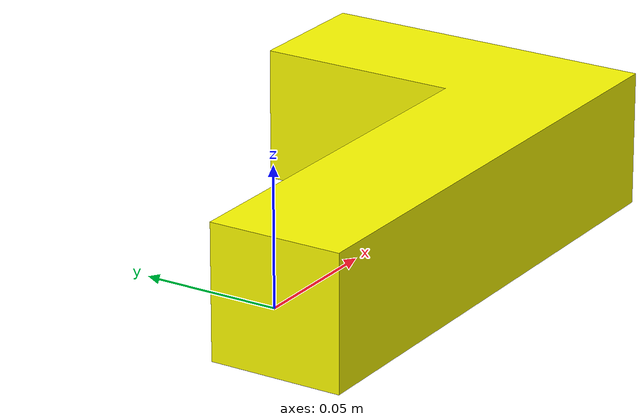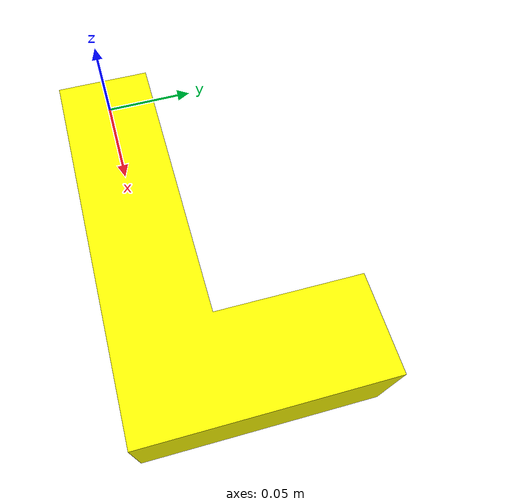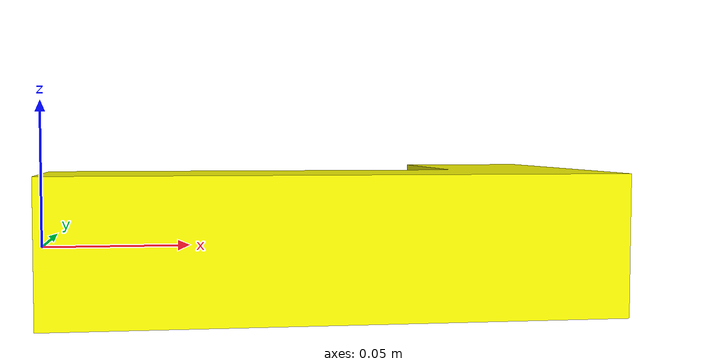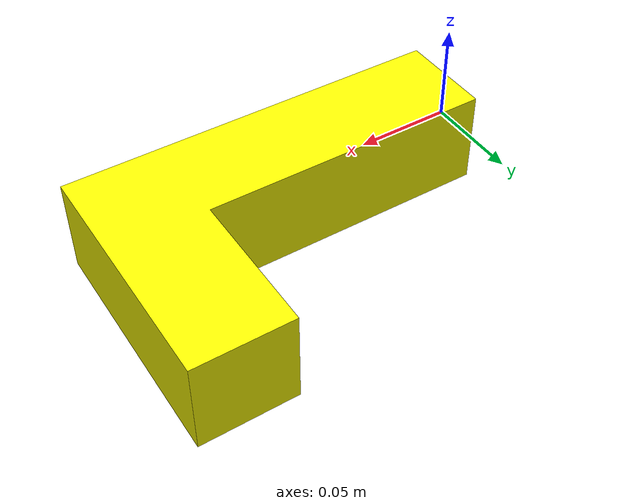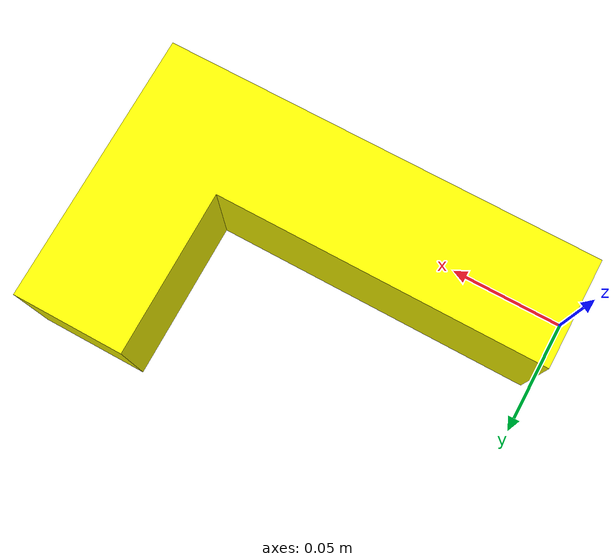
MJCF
<?xml version="1.0" ?>
<mujoco model="PullCubeTool_tool">
  <asset>
    <mesh name="PullCubeTool_tool" file="/home/ntu/Desktop/ant/RoboVerse/roboverse_data/assets/maniskill/PullCubeTool/tool/tool.stl" />
  </asset>
  <worldbody>
    <geom type="mesh" mesh="PullCubeTool_tool" mass="0.01"
    friction="1.5 0.2 0.01"
    solimp="0.9 0.95 0.001"
    rgba="1 1 0 1" />
  </worldbody>
</mujoco>
